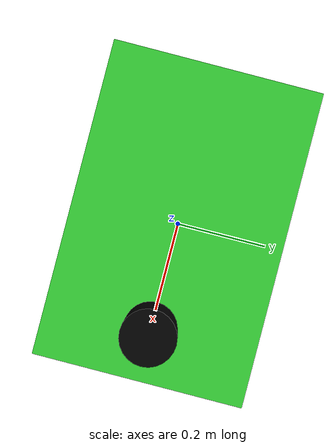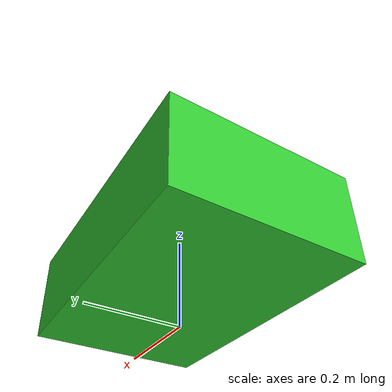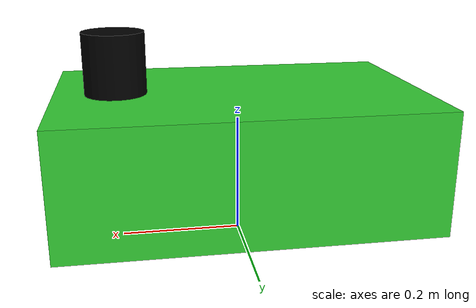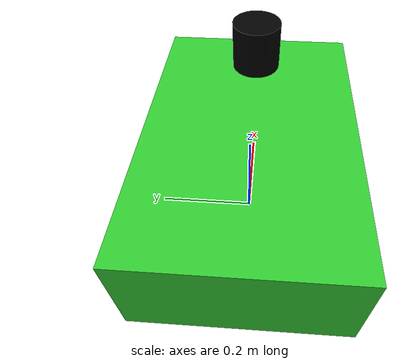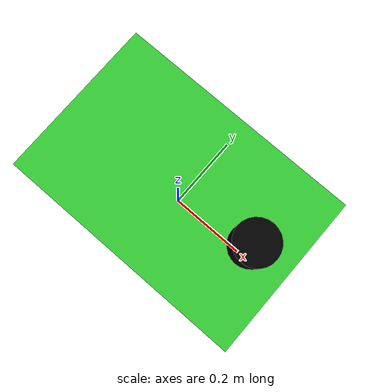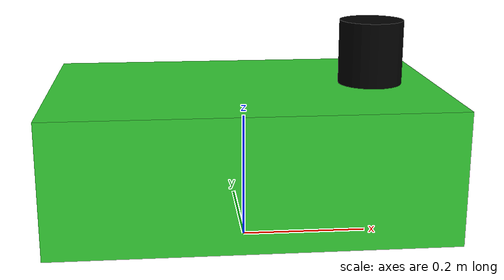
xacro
<?xml version="1.0"?>
<robot xmlns:xacro="http://www.ros.org/wiki/xacro" name="rover_agricola">

    <material name="verde">
        <color rgba="0.2 0.8 0.2 1.0"/>
    </material>
    <material name="negro">
        <color rgba="0.0 0.0 0.0 1.0"/>
    </material>

    <link name="base_footprint"/>

    <link name="base_link">
        <visual>
            <geometry>
                <box size="0.6 0.4 0.2"/>
            </geometry>
            <material name="verde"/>
        </visual>
    </link>

    <joint name="base_joint" type="fixed">
        <parent link="base_footprint"/>
        <child link="base_link"/>
        <origin xyz="0 0 0.15" rpy="0 0 0"/>
    </joint>

    <link name="laser_frame">
        <visual>
            <geometry>
                <cylinder radius="0.05" length="0.1"/>
            </geometry>
            <material name="negro"/>
        </visual>
    </link>

    <joint name="laser_joint" type="fixed">
        <parent link="base_link"/>
        <child link="laser_frame"/>
        <origin xyz="0.2 0 0.15" rpy="0 0 0"/>
    </joint>

</robot>
